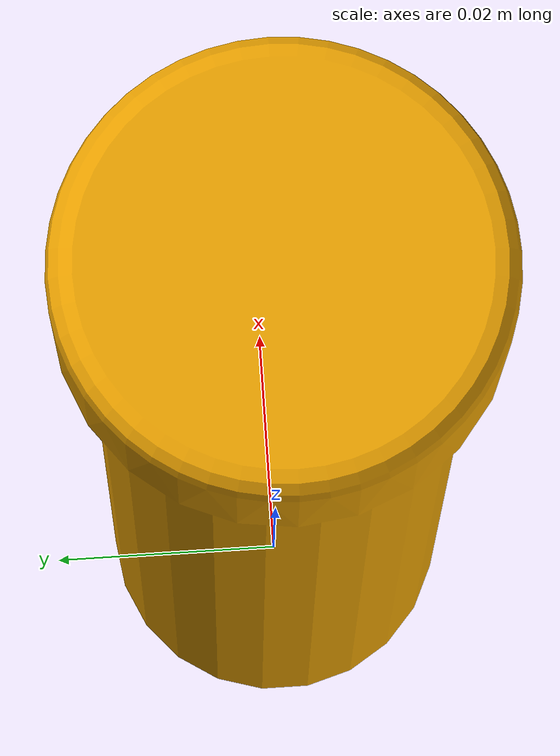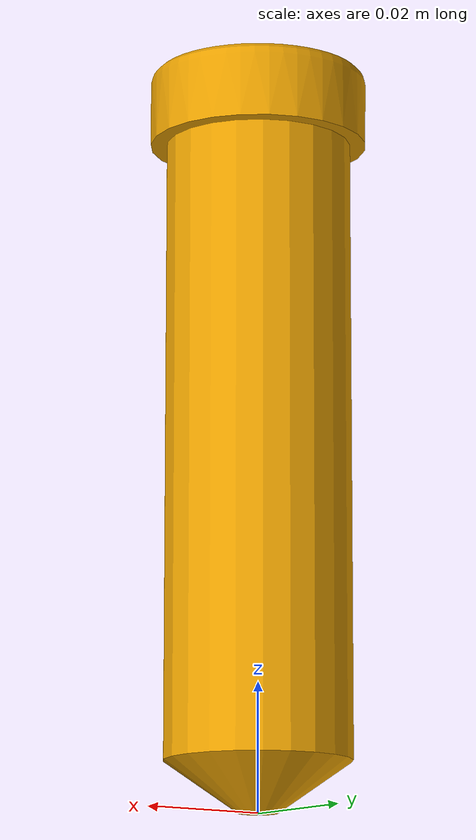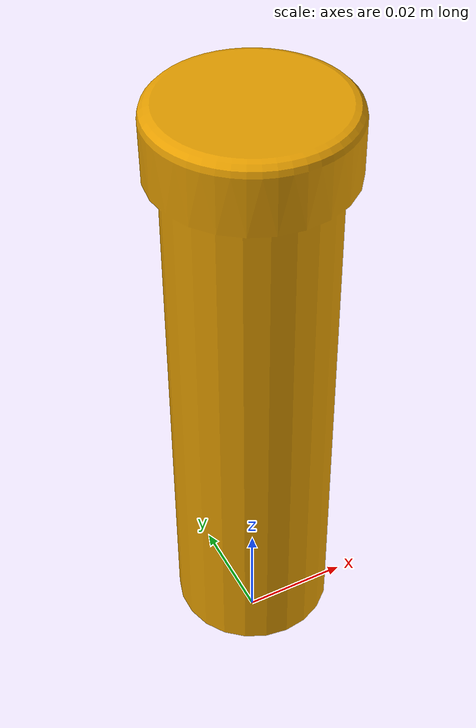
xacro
<?xml version="1.0" ?>
<robot xmlns:xacro="http://www.ros.org/wiki/xacro" name="tube">
    <link name='tube'>
        <visual name='visual'>
            <geometry>
                <mesh filename="meshes/tube.stl"/>
            </geometry>
            <material name="clay" />
        </visual>
    </link>
</robot>
